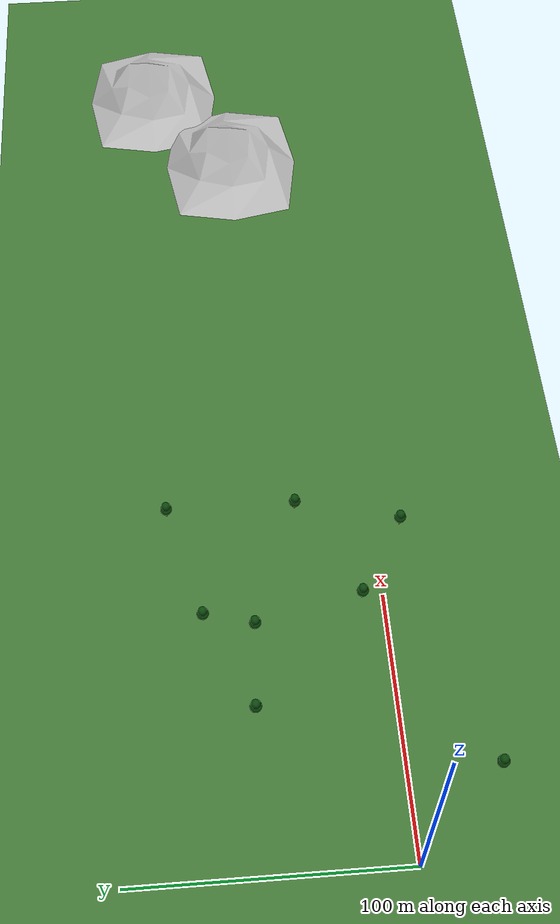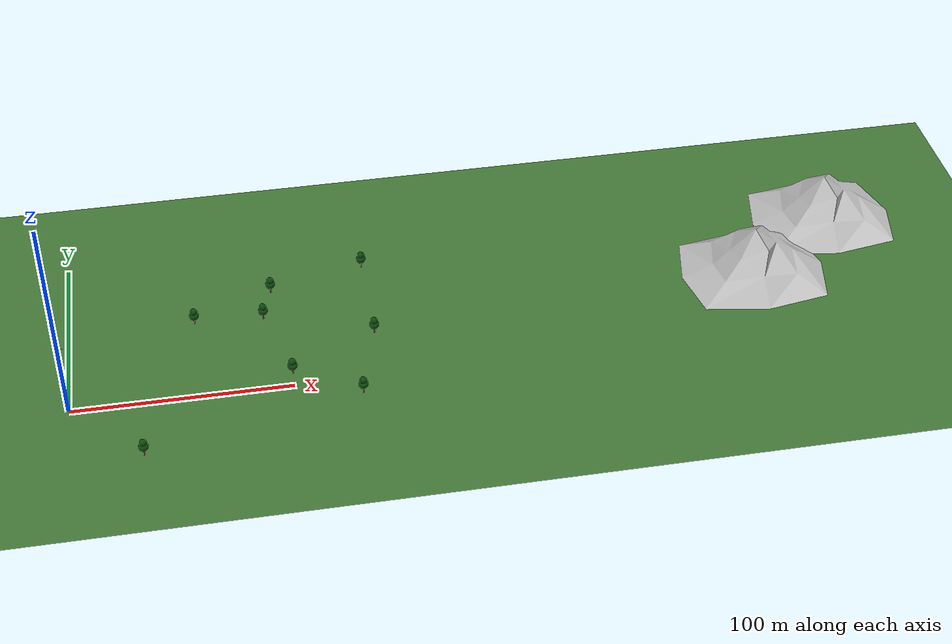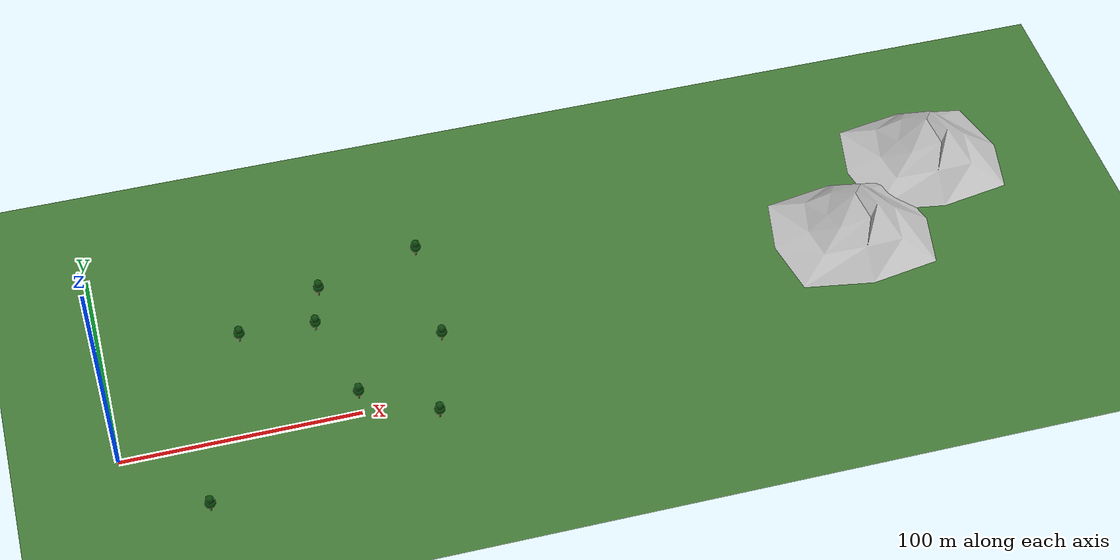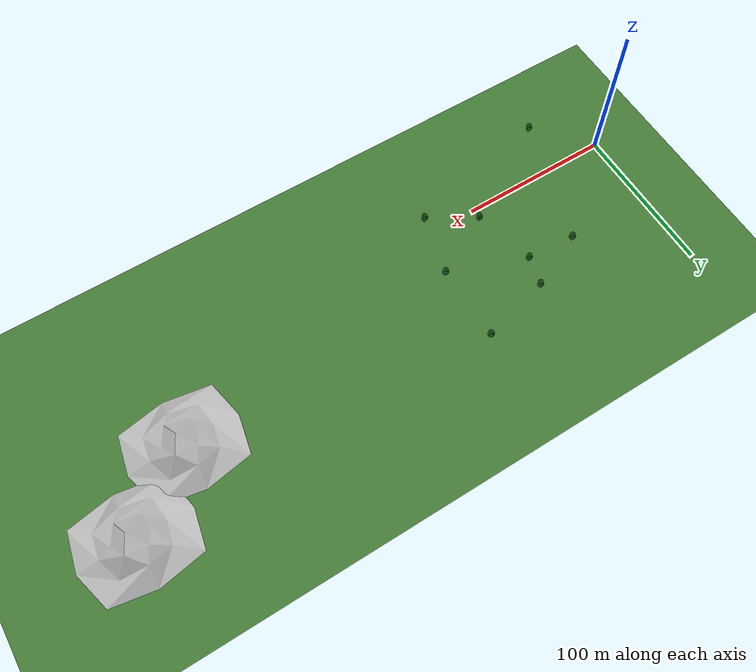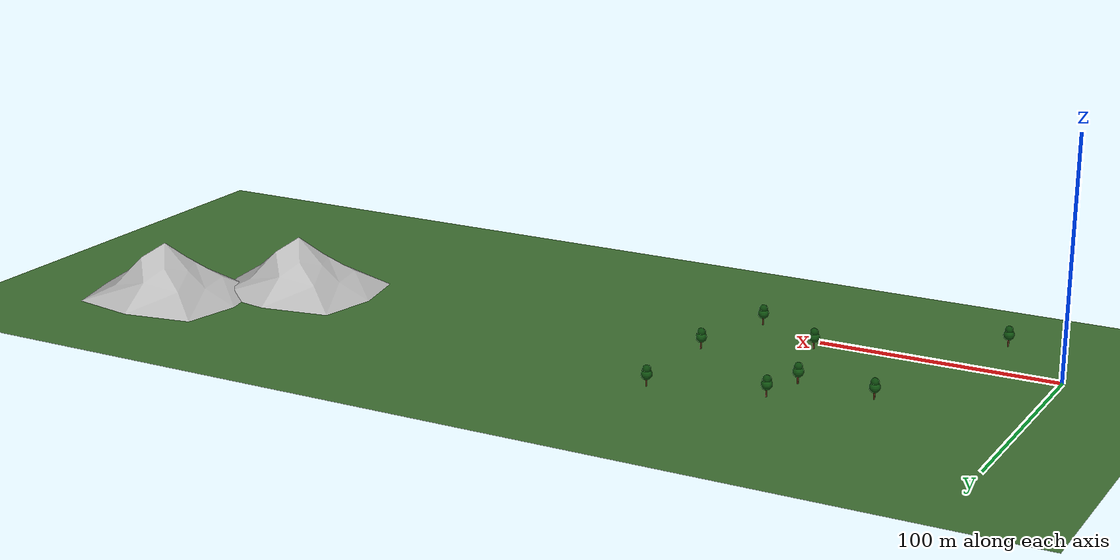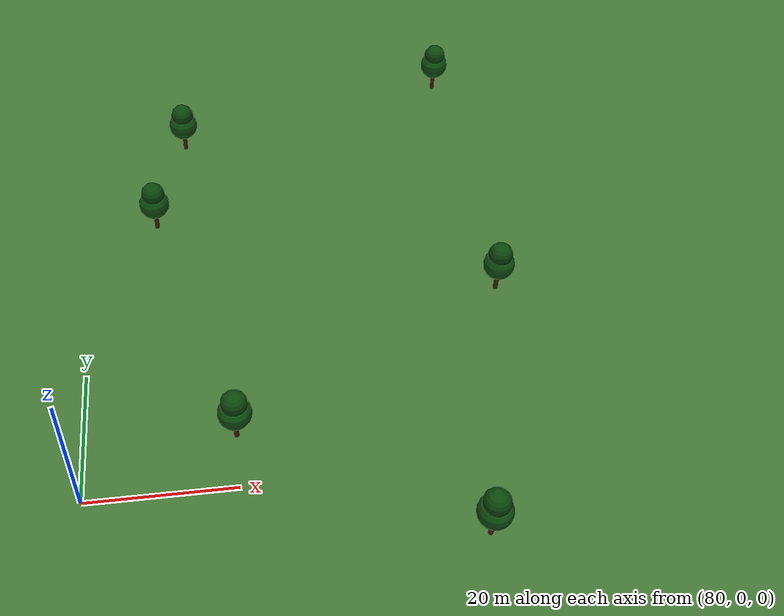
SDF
<sdf version="1.9">
 <world name="air_to_air">
  <physics name="default_physics" type="ignored">
   <max_step_size>0.001</max_step_size>
   <real_time_factor>1.0</real_time_factor>
  </physics>
  <plugin filename="gz-sim-physics-system" name="gz::sim::systems::Physics"/>
  <plugin filename="gz-sim-user-commands-system" name="gz::sim::systems::UserCommands"/>
  <plugin filename="gz-sim-scene-broadcaster-system" name="gz::sim::systems::SceneBroadcaster"/>
  <plugin filename="gz-sim-sensors-system" name="gz::sim::systems::Sensors">
   <render_engine>ogre2</render_engine>
  </plugin>
  <scene>
   <ambient>0.6 0.6 0.6 1.0</ambient>
   <background>0.75 0.85 1.0 1.0</background>
   <shadows>true</shadows>
  </scene>
  <light type="directional" name="sun">
   <pose>0 0 100 0 0 0</pose>
   <diffuse>0.9 0.9 0.9 1</diffuse>
   <specular>0.2 0.2 0.2 1</specular>
   <attenuation>
    <range>1000</range>
    <constant>0.9</constant>
    <linear>0.01</linear>
    <quadratic>0.001</quadratic>
   </attenuation>
   <direction>-0.5 0.2 -1.0</direction>
  </light>
  <model name="ground_plane">
   <static>true</static>
   <link name="link">
    <collision name="collision">
     <geometry><plane><normal>0 0 1</normal><size>2000 2000</size></plane></geometry>
    </collision>
    <visual name="visual">
     <geometry><plane><normal>0 0 1</normal><size>1000 1000</size></plane></geometry>
     <material>
      <ambient>0.20 0.35 0.15 1</ambient>
      <diffuse>0.25 0.45 0.20 1</diffuse>
      <specular>0.05 0.05 0.05 1</specular>
     </material>
    </visual>
   </link>
  </model>
  <include><uri>model://tree</uri><name>tree_5</name><pose>100 8 0 0 0 1</pose><static>true</static></include>
  <include><uri>model://tree</uri><name>tree_6</name><pose>140 30 0 0 0 0</pose><static>true</static></include>
  <include><uri>model://tree</uri><name>tree_9</name><pose>95 68 0 0 0 0</pose><static>true</static></include>
  <include><uri>model://tree</uri><name>tree_10</name><pose>90 49 0 0 0 0</pose><static>true</static></include>
  <include>
   <uri>model://tree</uri>
   <name>tree_12</name>
   <pose>32 -33 0 0 0 -0.5</pose>
   <static>true</static>
  </include>
  <include>
   <uri>model://tree</uri>
   <name>tree_13</name>
   <pose>58 51 0 0 0 0.1</pose>
   <static>true</static>
  </include>
  <include>
   <uri>model://tree</uri>
   <name>tree_19</name>
   <pose>140 80 0 0 0 0.3</pose>
   <static>true</static>
  </include>
  <include>
   <uri>model://tree</uri>
   <name>tree_20</name>
   <pose>130 -10 0 0 0 1.1</pose>
   <static>true</static>
  </include>
  <include><uri>model://mountain</uri><name>mountain_3</name><pose>326.54 43.76 0 0 0 0</pose></include>
  <include><uri>model://mountain</uri><name>mountain_5</name><pose>372.33 78.92 0 0 0 0</pose></include>
  <model name="fpv_camera_platform">
   <static>true</static>
   <pose>2 0 36.5 0 0.4 0</pose>
   <link name="camera_link">
    <visual name="camera_body_visual">
     <geometry><box><size>0.20 0.15 0.10</size></box></geometry>
     <material><ambient>0.1 0.1 0.1 1</ambient><diffuse>0.1 0.1 0.1 1</diffuse></material>
    </visual>
    <sensor name="fpv_camera" type="camera">
     <always_on>true</always_on>
     <update_rate>30</update_rate>
     <topic>/air_to_air/fpv_camera/image</topic>
     <camera>
      <horizontal_fov>1.57079632679</horizontal_fov>
      <image><width>1280</width><height>720</height><format>R8G8B8</format></image>
      <clip><near>0.1</near><far>1000</far></clip>
     </camera>
    </sensor>
   </link>
  </model>
 </world>
</sdf>

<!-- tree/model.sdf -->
<sdf version="1.9">

  <model name="tree">

    <static>true</static>

    <!-- Trunk                                              -->

    <link name="trunk">

      <pose>0 0 2.0 0 0 0</pose>

      <visual name="trunk_visual">

        <geometry>
          <cylinder>
            <radius>0.35</radius>
            <length>4.0</length>
          </cylinder>
        </geometry>

        <material>
          <ambient>0.20 0.10 0.04 1</ambient>
          <diffuse>0.30 0.15 0.05 1</diffuse>
          <specular>0.02 0.02 0.02 1</specular>
        </material>

      </visual>

    </link>

    <!-- Lower Foliage                                      -->

    <link name="lower_foliage">

      <pose>0 0 5.0 0 0 0</pose>

      <visual name="lower_foliage_visual">

        <geometry>
          <sphere>
            <radius>2.3</radius>
          </sphere>
        </geometry>

        <material>
          <ambient>0.04 0.20 0.04 1</ambient>
          <diffuse>0.06 0.32 0.06 1</diffuse>
          <specular>0.01 0.01 0.01 1</specular>
        </material>

      </visual>

    </link>

    <!-- Upper Foliage                                      -->

    <link name="upper_foliage">

      <pose>0 0 7.0 0 0 0</pose>

      <visual name="upper_foliage_visual">

        <geometry>
          <sphere>
            <radius>1.8</radius>
          </sphere>
        </geometry>

        <material>
          <ambient>0.03 0.16 0.03 1</ambient>
          <diffuse>0.04 0.27 0.04 1</diffuse>
          <specular>0.01 0.01 0.01 1</specular>
        </material>

      </visual>

    </link>

  </model>

</sdf>

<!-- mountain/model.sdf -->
<sdf version="1.9">

  <model name="mountain">

    <static>true</static>

    <link name="mountain_link">

      <visual name="mountain_visual">

        <geometry>

          <mesh>
            <uri>model://mountain/meshes/mountain.obj</uri>
          </mesh>

        </geometry>

      </visual>

    </link>

  </model>

</sdf>
